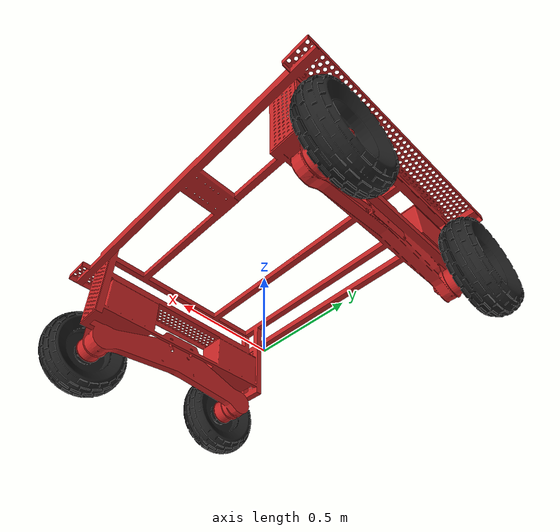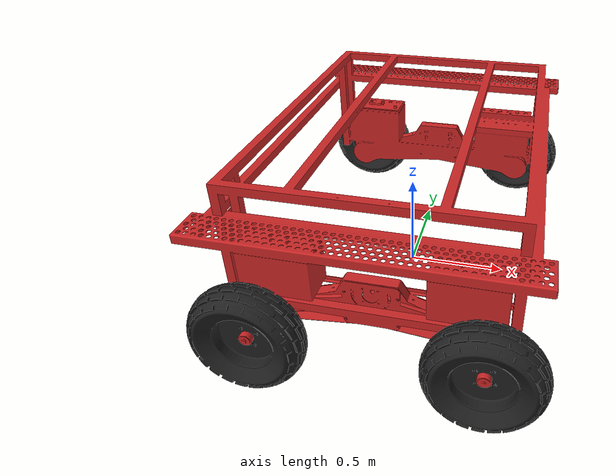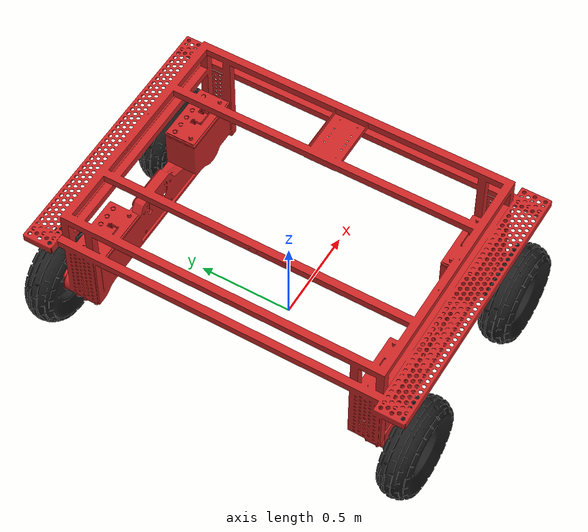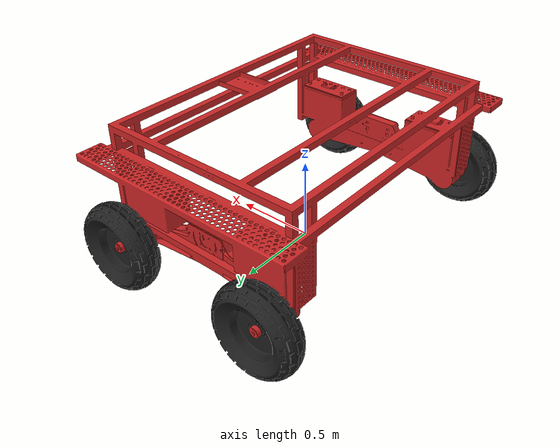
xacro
<?xml version="1.0"?>

<robot xmlns:xacro="http://www.ros.org/wiki/xacro" name="volcanibot">

  <xacro:arg name="is_ignition" default="true" />
  <xacro:arg name="use_sim" default="true" />
  <xacro:arg name="lidar" default="false" />
  <xacro:arg name="camera" default="false" />
  <xacro:arg name="gps" default="false" />
  <xacro:arg name="serial_port" default="/dev/roboteq" />
  <xacro:arg name="baud_rate" default="115200" />

  <!-- Include Gazebo plugins -->
  <xacro:include filename="$(find volcanibot_description)/urdf/volcanibot_gazebo.xacro" />

  <!-- Include ROS 2 Control plugins -->
  <xacro:include filename="$(find volcanibot_description)/urdf/volcanibot_ros2_control.xacro" />

  <!-- Colors -->
  <xacro:include filename="$(find volcanibot_description)/urdf/materials.xacro" />

  <!-- Optional Ouster Rev5 (OS2) lidar -->
  <xacro:if value="$(arg lidar)">
    <xacro:include filename="$(find volcanibot_description)/urdf/volcanibot_lidar.xacro" />
  </xacro:if>

  <!-- Define the world link -->
  <link name="base_footprint"/>

  <!-- Define a joint connecting world to base_link -->
  <joint name="base_footprint_to_base_link" type="fixed">
    <parent link="base_footprint"/>
    <child link="base_link"/>
    <origin xyz="0 0 0.9" rpy="0 0 0"/>
  </joint>

  <link name="base_link">
    <inertial>
      <origin
        xyz="0.000824745609091071 0.000308432013766069 -0.348795097773962"
        rpy="0 0 0" />
      <mass
        value="98.2206347258376" />
      <inertia
        ixx="8.04861649065602"
        ixy="-0.000243505296496384"
        ixz="-1.23536316318022E-12"
        iyy="8.02628327825716"
        iyz="-2.67210376330799E-13"
        izz="14.6198876609904" />
    </inertial>
    <visual>
      <origin xyz="0 0 0" rpy="0 0 0" />
      <geometry>
        <mesh filename="package://volcanibot_description/meshes/base_link.STL" />
      </geometry>
      <material name="red"/>
    </visual>
    <collision>
      <origin xyz="0 0 0" rpy="0 0 0" />
      <geometry>
        <mesh filename="package://volcanibot_description/meshes/base_link.STL" />
      </geometry>
    </collision>
  </link>

  <link name="rear_right_wheel_link">
    <inertial>
      <origin
        xyz="7.66942065411058E-12 0.00246396479612621 -1.02851061001275E-12"
        rpy="0 0 0" />
      <mass
        value="19.5682646733117" />
      <inertia
        ixx="0.41545797245674"
        ixy="1.5364211917504E-12"
        ixz="-7.82486812116746E-13"
        iyy="0.768576636338704"
        iyz="-4.25891260535319E-13"
        izz="0.415457972457063" />
    </inertial>
    <visual>
      <origin xyz="0 0 0" rpy="0 0 0" />
      <geometry>
        <mesh filename="package://volcanibot_description/meshes/rear_right_wheel_link.STL" />
      </geometry>
      <material name="black"/>
    </visual>
    <collision>
      <origin xyz="0 0 0" rpy="0 0 0" />
      <geometry>
        <sphere radius="0.26"/>
      </geometry>
    </collision>
  </link>

  <joint name="rear_right_wheel_joint" type="continuous">
    <origin
      xyz="-0.5 -0.9705 -0.66"
      rpy="0 0 0" />
    <parent
      link="base_link" />
    <child
      link="rear_right_wheel_link" />
    <axis
      xyz="0 1 0" />
  </joint>

  <link name="rear_left_wheel_link">
    <inertial>
      <origin
        xyz="-4.86310991476557E-12 -0.00246396479612798 6.07225381088483E-12"
        rpy="0 0 0" />
      <mass
        value="19.568264673306" />
      <inertia
        ixx="0.415457972457667"
        ixy="1.15340457833747E-12"
        ixz="-2.28669379319239E-13"
        iyy="0.768576636338705"
        iyz="-1.1012630858852E-12"
        izz="0.415457972456137" />
    </inertial>
    <visual>
      <origin xyz="0 0 0" rpy="0 0 0" />
      <geometry>
        <mesh filename="package://volcanibot_description/meshes/rear_left_wheel_link.STL" />
      </geometry>
      <material name="black"/>
    </visual>
    <collision>
      <origin xyz="0 0 0" rpy="0 0 0" />
      <geometry>
        <sphere radius="0.26"/>
      </geometry>
    </collision>
  </link>

  <joint name="rear_left_wheel_joint" type="continuous">
    <origin
      xyz="-0.5 0.9705 -0.66"
      rpy="0 0 0" />
    <parent
      link="base_link" />
    <child
      link="rear_left_wheel_link" />
    <axis
      xyz="0 1 0" />
  </joint>

  <link name="front_left_wheel_link">
    <inertial>
      <origin
        xyz="3.00337532621597E-12 -0.00246396479612554 7.17892412183119E-12"
        rpy="0 0 0" />
      <mass
        value="19.5682646733116" />
      <inertia
        ixx="0.415457972456292"
        ixy="-4.16150298831959E-13"
        ixz="-5.16513213527462E-13"
        iyy="0.768576636338703"
        iyz="-1.53906128365951E-12"
        izz="0.415457972457511" />
    </inertial>
    <visual>
      <origin xyz="0 0 0" rpy="0 0 0" />
      <geometry>
        <mesh filename="package://volcanibot_description/meshes/front_left_wheel_link.STL" />
      </geometry>
      <material name="black"/>
    </visual>
    <collision>
      <origin xyz="0 0 0" rpy="0 0 0" />
      <geometry>
        <sphere radius="0.26"/>
      </geometry>
    </collision>
  </link>

  <joint name="front_left_wheel_joint" type="continuous">
    <origin
      xyz="0.5 0.9705 -0.66"
      rpy="0 0 0" />
    <parent
      link="base_link" />
    <child
      link="front_left_wheel_link" />
    <axis
      xyz="0 1 0" />
    <mimic joint="rear_left_wheel_joint" multiplier="1.0" offset="0.0"/>
  </joint>

  <link name="front_right_wheel_link">
    <inertial>
      <origin
        xyz="7.52264917025514E-12 0.00246396479612709 1.99529281985633E-12"
        rpy="0 0 0" />
      <mass
        value="19.5682646733087" />
      <inertia
        ixx="0.415457972457348"
        ixy="1.58185015757493E-12"
        ixz="-6.62619227143719E-13"
        iyy="0.768576636338703"
        iyz="2.0216381958391E-13"
        izz="0.415457972456455" />
    </inertial>
    <visual>
      <origin xyz="0 0 0" rpy="0 0 0" />
      <geometry>
        <mesh filename="package://volcanibot_description/meshes/front_right_wheel_link.STL" />
      </geometry>
      <material name="black"/>
    </visual>
    <collision>
      <origin xyz="0 0 0" rpy="0 0 0" />
      <geometry>
        <sphere radius="0.26"/>
      </geometry>
    </collision>
  </link>

  <joint name="front_right_wheel_joint" type="continuous">
    <origin
      xyz="0.5 -0.9705 -0.66"
      rpy="0 0 0" />
    <parent
      link="base_link" />
    <child
      link="front_right_wheel_link" />
    <axis
      xyz="0 1 0" />
    <mimic joint="rear_right_wheel_joint" multiplier="1.0" offset="0.0"/>
  </joint>

  <!-- Optional RGBD camera -->
  <xacro:if value="$(arg camera)">
    <joint type="fixed" name="camera_joint">
      <origin xyz="0.6 0 0.07" rpy="0 0.2 0"/>
      <child link="camera_link"/>
      <parent link="base_link"/>
      <axis xyz="0 1 0" />
    </joint>

    <link name="camera_link">
      <inertial>
        <mass value="0.1"/>
        <origin xyz="0 0 0" rpy="0 0 0"/>
        <inertia
            ixx="1e-6" ixy="0" ixz="0"
            iyy="1e-6" iyz="0"
            izz="1e-6"
        />
      </inertial>

      <collision>
        <origin xyz="0 0 0" rpy="0 0 0"/>
        <geometry>
          <box size="0.03 0.03 0.03"/>
        </geometry>
      </collision>

      <visual>
        <origin xyz="0 0 0" rpy="0 0 0"/>
        <geometry>
          <box size="0.03 0.03 0.03"/>
        </geometry>
      </visual>
    </link>

    <gazebo reference="camera_link">
      <material>Gazebo/Red</material>
    </gazebo>

    <joint type="fixed" name="camera_optical_joint">
      <origin xyz="0 0 0" rpy="-1.5707 0 -1.5707"/>
      <child link="camera_link_optical"/>
      <parent link="camera_link"/>
    </joint>

    <link name="camera_link_optical">
    </link>
  </xacro:if>

  <!-- Optional dual GPS/RTK antennas (Trimble). Physical payload; included
       only when gps:=true so sim and lidar/camera-only runs stay uncluttered. -->
  <xacro:if value="$(arg gps)">
    <link name="gps_antenna_pos_right">
      <visual>
        <origin xyz="-0.074 0.075 0" rpy="1.57 0 0"/>
        <geometry>
          <mesh filename="package://volcanibot_description/meshes/GPS_Antenna.STL" scale="0.001 0.001 0.001"/>
        </geometry>
        <material name="gps_silver">
          <color rgba="0.75 0.75 0.78 1"/>
        </material>
      </visual>
      <visual>
        <origin xyz="0 0 -0.555" rpy="0 0 0"/>
        <geometry>
          <box size="0.02 0.02 1.11"/>
        </geometry>
        <material name="gps_rod">
          <color rgba="0.5 0.5 0.52 1"/>
        </material>
      </visual>
    </link>
    <joint name="gps_antenna_pos_right_joint" type="fixed">
      <parent link="base_link"/>
      <child link="gps_antenna_pos_right"/>
      <origin xyz="-0.6 -0.87 0.97" rpy="0 0 0"/>
    </joint>

    <link name="gps_antenna_pos_left">
      <visual>
        <origin xyz="-0.074 0.075 0" rpy="1.57 0 0"/>
        <geometry>
          <mesh filename="package://volcanibot_description/meshes/GPS_Antenna.STL" scale="0.001 0.001 0.001"/>
        </geometry>
        <material name="gps_silver">
          <color rgba="0.75 0.75 0.78 1"/>
        </material>
      </visual>
      <visual>
        <origin xyz="0 0 -0.555" rpy="0 0 0"/>
        <geometry>
          <box size="0.02 0.02 1.11"/>
        </geometry>
        <material name="gps_rod">
          <color rgba="0.5 0.5 0.52 1"/>
        </material>
      </visual>
    </link>
    <joint name="gps_antenna_pos_left_joint" type="fixed">
      <parent link="base_link"/>
      <child link="gps_antenna_pos_left"/>
      <origin xyz="0.6 0.87 0.97" rpy="0 0 0"/>
    </joint>
  </xacro:if>

</robot>
